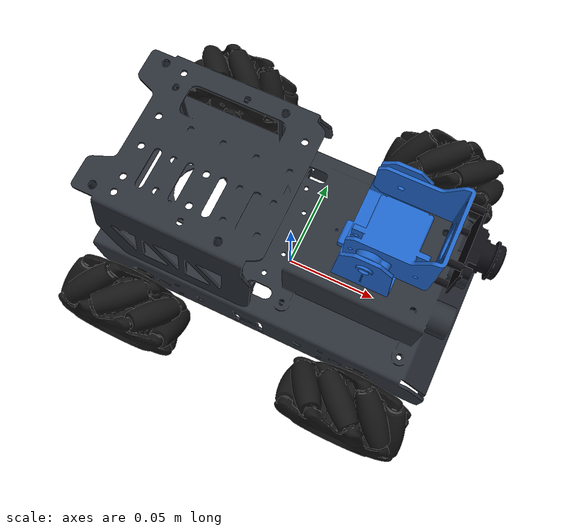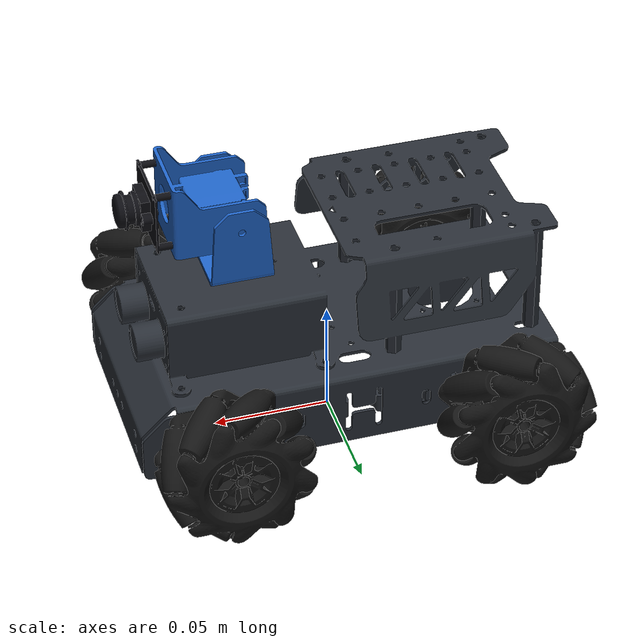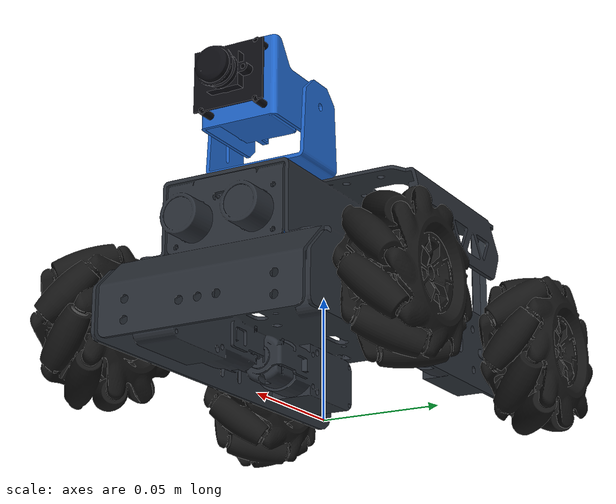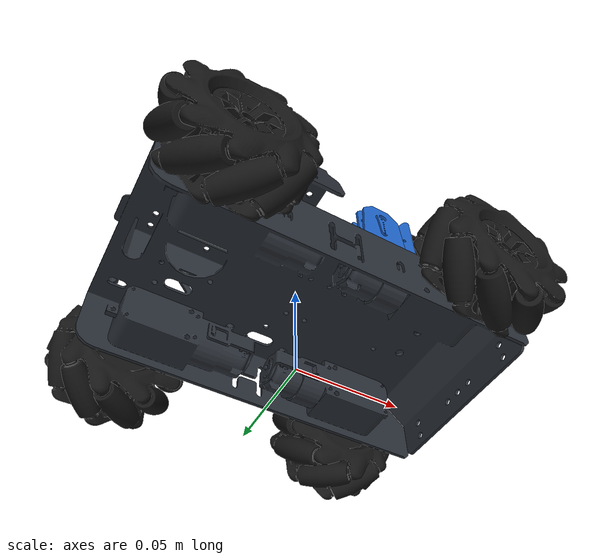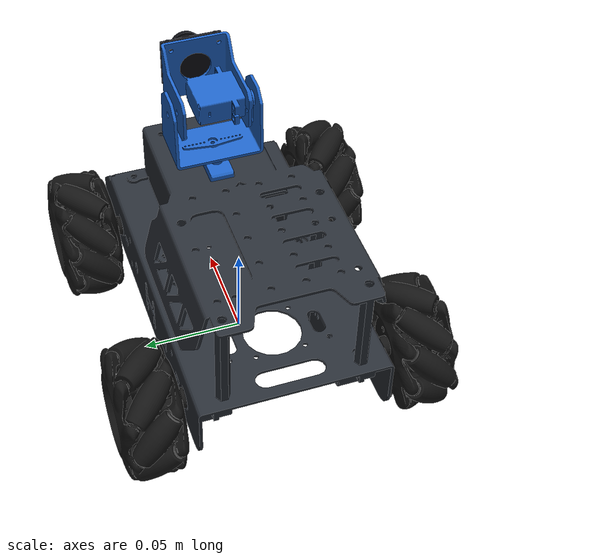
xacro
<?xml version="1.0" encoding="utf-8"?>
<robot name="turbopi" xmlns:xacro="http://ros.org/wiki/xacro">

  <!-- base_link -->
  <link name="base_link">
    <inertial>
      <origin xyz="0.0026189 -8.907E-05 -0.0059243" rpy="0 0 0" />
      <mass value="0.16693" />
      <inertia ixx="8.527E-05" ixy="-1.7865E-08" ixz="3.8947E-06" iyy="0.00014973" iyz="9.9047E-08" izz="0.00021247" />
    </inertial>
    <visual>
      <origin xyz="0 0 0" rpy="0 0 0" />
      <geometry>
        <mesh filename="package://turbopi_description/meshes/base_link.STL" />
      </geometry>
      <material name="base_link">
        <color rgba="0.16 0.18 0.21 1" />
      </material>
    </visual>
    <collision>
      <origin xyz="0 0 0" rpy="0 0 0" />
      <geometry>
        <mesh filename="package://turbopi_description/meshes/base_link.STL" />
      </geometry>
    </collision>
  </link>

  <!-- base_footprint -->
  <link name="base_footprint"/>
  <joint name="base_footprint_to_base_link" type="fixed">
    <parent link="base_footprint"/>
    <child link="base_link"/>
    <origin xyz="0 0 0.05" rpy="0 0 0"/>
  </joint>

  <!-- servo -->
  <link name="link1">
    <inertial>
      <origin xyz="0.00046928 -1.0325E-05 0.012575" rpy="0 0 0" />
      <mass value="0.0046713" />
      <inertia ixx="1.0234E-07" ixy="8.1837E-11" ixz="-5.1631E-09" iyy="2.7132E-07" iyz="1.5424E-10" izz="2.8725E-07" />
    </inertial>
    <visual>
      <origin xyz="0 0 0" rpy="0 0 0" />
      <geometry>
        <mesh filename="package://turbopi_description/meshes/link1.STL" />
      </geometry>
      <material name="link1">
        <color rgba="0.12 0.39 0.78 1" />
      </material>
    </visual>
    <collision>
      <origin xyz="0 0 0" rpy="0 0 0" />
      <geometry>
        <mesh filename="package://turbopi_description/meshes/link1.STL" />
      </geometry>
    </collision>
  </link>
  <joint name="joint1" type="fixed">
    <origin xyz="0.036409 -1.5623E-05 0.010452" rpy="0 0 0" />
    <parent link="base_link" />
    <child link="link1" />
    <axis xyz="0 0 0" />
  </joint>

  <link name="link2">
    <inertial>
      <origin xyz="1.6809E-10 -0.00034562 0.0084985" rpy="0 0 0" />
      <mass value="0.0040591" />
      <inertia ixx="1.6419E-06" ixy="6.7169E-14" ixz="9.1491E-15" iyy="6.1322E-07" iyz="-2.1443E-08" izz="1.4331E-06" />
    </inertial>
    <visual>
      <origin xyz="0 0 0" rpy="0 0 0" />
      <geometry>
        <mesh filename="package://turbopi_description/meshes/link2.STL" />
      </geometry>
      <material name="link2">
        <color rgba="0.12 0.39 0.78 1" />
      </material>
    </visual>
    <collision>
      <origin xyz="0 0 0" rpy="0 0 0" />
      <geometry>
        <mesh filename="package://turbopi_description/meshes/link2.STL" />
      </geometry>
    </collision>
  </link>
  <joint name="joint2" type="revolute">
    <origin xyz="0.005349 1.0781E-05 0.0301" rpy="0 0 0" />
    <parent link="link1" />
    <child link="link2" />
    <axis xyz="0 0 -1" />
    <limit lower="-1.5708" upper="1.5708" effort="2.0" velocity="3.0" />
  </joint>

  <link name="link3">
    <inertial>
      <origin xyz="0.0092132 -0.0017689 0.0011854" rpy="0 0 0" />
      <mass value="0.0083097" />
      <inertia ixx="1.1387E-06" ixy="4.0387E-08" ixz="-9.3721E-08" iyy="1.0893E-06" iyz="9.0678E-09" izz="1.5389E-06" />
    </inertial>
    <visual>
      <origin xyz="0 0 0" rpy="0 0 0" />
      <geometry>
        <mesh filename="package://turbopi_description/meshes/link3.STL" />
      </geometry>
      <material name="link3">
        <color rgba="0.12 0.39 0.78 1" />
      </material>
    </visual>
    <collision>
      <origin xyz="0 0 0" rpy="0 0 0" />
      <geometry>
        <mesh filename="package://turbopi_description/meshes/link3.STL" />
      </geometry>
    </collision>
  </link>
  <joint name="joint3" type="revolute">
    <origin xyz="0 0 0.023263" rpy="0 0 0" />
    <parent link="link2" />
    <child link="link3" />
    <axis xyz="0 -1 0" />
    <limit lower="-0.383" upper="1.884" effort="2.0" velocity="3.0" />
  </joint>

  <!-- camera -->
  <link name="camera_link">
    <inertial>
      <origin xyz="0.0049726 1.4138E-07 1.6342E-05" rpy="0 0 0" />
      <mass value="0.0034762" />
      <inertia ixx="1.7039E-07" ixy="-4.9109E-13" ixz="1.0447E-10" iyy="8.7367E-08" iyz="1.923E-13" izz="1.154E-07" />
    </inertial>
    <visual>
      <origin xyz="0 0 0" rpy="0 0 0" />
      <geometry>
        <mesh filename="package://turbopi_description/meshes/camera_link.STL" />
      </geometry>
      <material name="camera_link">
        <color rgba="0.05 0.05 0.07 1" />
      </material>
    </visual>
    <collision>
      <origin xyz="0 0 0" rpy="0 0 0" />
      <geometry>
        <mesh filename="package://turbopi_description/meshes/camera_link.STL" />
      </geometry>
    </collision>
  </link>
  <joint name="camera_joint" type="fixed">
    <origin xyz="0.032509 0.00059237 0.0052892" rpy="0 0 0" />
    <parent link="link3" />
    <child link="camera_link" />
    <axis xyz="0 0 0" />
  </joint>

  <!-- wheel_lf -->
  <link name="wheel_lf_link">
    <inertial>
      <origin xyz="5.324E-05 0.00072035 3.2904E-05" rpy="0 0 0" />
      <mass value="0.037689" />
      <inertia ixx="3.6748E-06" ixy="-1.4307E-09" ixz="-1.2017E-08" iyy="5.8098E-06" iyz="1.7256E-09" izz="3.6774E-06" />
    </inertial>
    <visual>
      <origin xyz="0 0 0" rpy="0 0 0" />
      <geometry>
        <mesh filename="package://turbopi_description/meshes/wheel_lf_link.STL" />
      </geometry>
      <material name="wheel_lf_link">
        <color rgba="0.08 0.08 0.08 1" />
      </material>
    </visual>
    <collision>
      <origin xyz="0 0 0" rpy="0 0 0" />
      <geometry>
        <mesh filename="package://turbopi_description/meshes/wheel_lf_link.STL" />
      </geometry>
    </collision>
  </link>
  <joint name="wheel_lf_joint" type="continuous">
    <origin xyz="0.057814 0.064852 -0.017526" rpy="0 0 0" />
    <parent link="base_link" />
    <child link="wheel_lf_link" />
    <axis xyz="0 -1 0" />
  </joint>

  <!-- wheel_lb -->
  <link name="wheel_lb_link">
    <inertial>
      <origin xyz="-5.3309E-05 0.00072022 3.295E-05" rpy="0 0 0" />
      <mass value="0.037684" />
      <inertia ixx="3.6742E-06" ixy="1.4767E-09" ixz="1.2007E-08" iyy="5.8089E-06" iyz="1.7249E-09" izz="3.6768E-06" />
    </inertial>
    <visual>
      <origin xyz="0 0 0" rpy="0 0 0" />
      <geometry>
        <mesh filename="package://turbopi_description/meshes/wheel_lb_link.STL" />
      </geometry>
      <material name="wheel_lb_link">
        <color rgba="0.08 0.08 0.08 1" />
      </material>
    </visual>
    <collision>
      <origin xyz="0 0 0" rpy="0 0 0" />
      <geometry>
        <mesh filename="package://turbopi_description/meshes/wheel_lb_link.STL" />
      </geometry>
    </collision>
  </link>
  <joint name="wheel_lb_joint" type="continuous">
    <origin xyz="-0.061513 0.064852 -0.017526" rpy="0 0 0" />
    <parent link="base_link" />
    <child link="wheel_lb_link" />
    <axis xyz="0 1 0" />
  </joint>

  <!-- wheel_rb -->
  <link name="wheel_rb_link">
    <inertial>
      <origin xyz="-5.3273E-05 -0.00042384 3.2896E-05" rpy="0 0 0" />
      <mass value="0.037689" />
      <inertia ixx="3.6748E-06" ixy="-1.4319E-09" ixz="1.2016E-08" iyy="5.8099E-06" iyz="-1.7242E-09" izz="3.6774E-06" />
    </inertial>
    <visual>
      <origin xyz="0 0 0" rpy="0 0 0" />
      <geometry>
        <mesh filename="package://turbopi_description/meshes/wheel_rb_link.STL" />
      </geometry>
      <material name="wheel_rb_link">
        <color rgba="0.08 0.08 0.08 1" />
      </material>
    </visual>
    <collision>
      <origin xyz="0 0 0" rpy="0 0 0" />
      <geometry>
        <mesh filename="package://turbopi_description/meshes/wheel_rb_link.STL" />
      </geometry>
    </collision>
  </link>
  <joint name="wheel_rb_joint" type="continuous">
    <origin xyz="-0.061513 -0.065148 -0.017526" rpy="0 0 0" />
    <parent link="base_link" />
    <child link="wheel_rb_link" />
    <axis xyz="0 1 0" />
  </joint>

  <!-- wheel_rf -->
  <link name="wheel_rf_link">
    <inertial>
      <origin xyz="5.331E-05 -0.0004237 3.2949E-05" rpy="0 0 0" />
      <mass value="0.037684" />
      <inertia ixx="3.6742E-06" ixy="1.4763E-09" ixz="-1.2007E-08" iyy="5.8089E-06" iyz="-1.7258E-09" izz="3.6768E-06" />
    </inertial>
    <visual>
      <origin xyz="0 0 0" rpy="0 0 0" />
      <geometry>
        <mesh filename="package://turbopi_description/meshes/wheel_rf_link.STL" />
      </geometry>
      <material name="wheel_rf_link">
        <color rgba="0.08 0.08 0.08 1" />
      </material>
    </visual>
    <collision>
      <origin xyz="0 0 0" rpy="0 0 0" />
      <geometry>
        <mesh filename="package://turbopi_description/meshes/wheel_rf_link.STL" />
      </geometry>
    </collision>
  </link>
  <joint name="wheel_rf_joint" type="continuous">
    <origin xyz="0.057814 -0.065148 -0.017526" rpy="0 0 0" />
    <parent link="base_link" />
    <child link="wheel_rf_link" />
    <axis xyz="0 -1 0" />
  </joint>

</robot>
